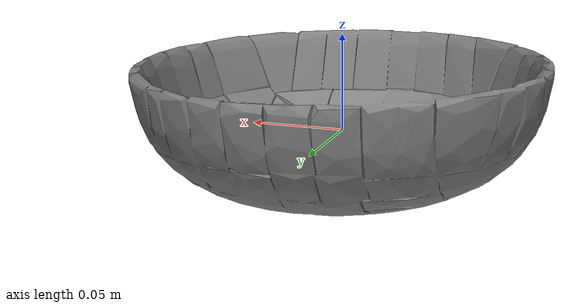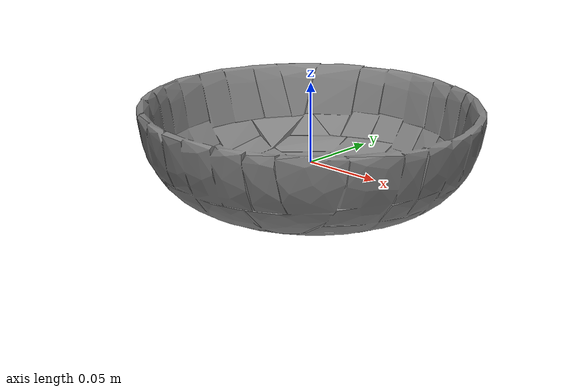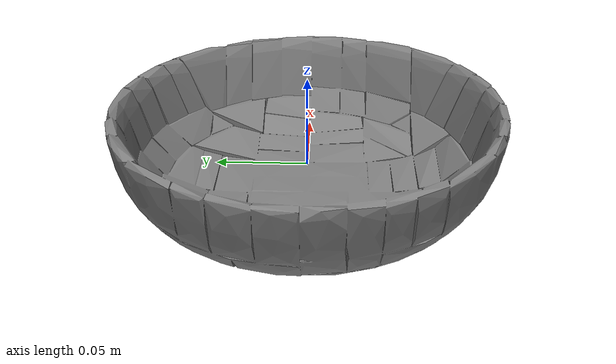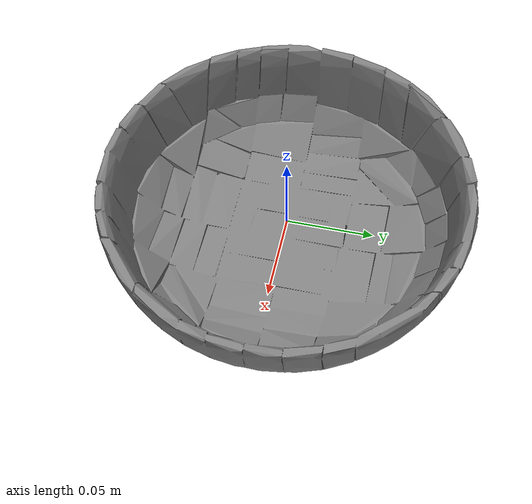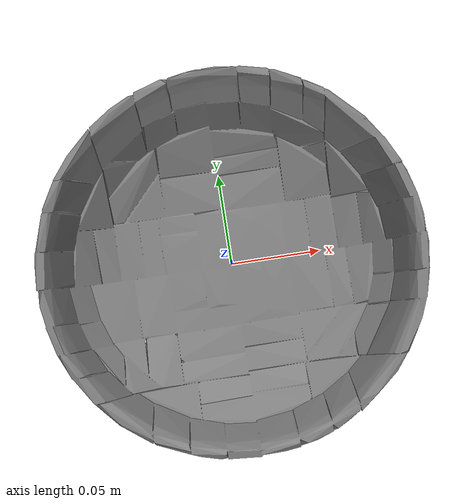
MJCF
<mujoco model="bowl_Threshold_Porcelain_Serving_Bowl_Coupe_White_M">
  <default>
    <default class="visual">
      <geom group="2" type="mesh" contype="0" conaffinity="0" />
    </default>
    <default class="collision">
      <geom group="3" type="mesh" />
    </default>
  </default>
  <asset>
    <mesh file="bowl_Threshold_Porcelain_Serving_Bowl_Coupe_White_M.stl" />
    <mesh file="bowl_Threshold_Porcelain_Serving_Bowl_Coupe_White_M_collision_0.stl" />
    <mesh file="bowl_Threshold_Porcelain_Serving_Bowl_Coupe_White_M_collision_1.stl" />
    <mesh file="bowl_Threshold_Porcelain_Serving_Bowl_Coupe_White_M_collision_2.stl" />
    <mesh file="bowl_Threshold_Porcelain_Serving_Bowl_Coupe_White_M_collision_3.stl" />
    <mesh file="bowl_Threshold_Porcelain_Serving_Bowl_Coupe_White_M_collision_4.stl" />
    <mesh file="bowl_Threshold_Porcelain_Serving_Bowl_Coupe_White_M_collision_5.stl" />
    <mesh file="bowl_Threshold_Porcelain_Serving_Bowl_Coupe_White_M_collision_6.stl" />
    <mesh file="bowl_Threshold_Porcelain_Serving_Bowl_Coupe_White_M_collision_7.stl" />
    <mesh file="bowl_Threshold_Porcelain_Serving_Bowl_Coupe_White_M_collision_8.stl" />
    <mesh file="bowl_Threshold_Porcelain_Serving_Bowl_Coupe_White_M_collision_9.stl" />
    <mesh file="bowl_Threshold_Porcelain_Serving_Bowl_Coupe_White_M_collision_10.stl" />
    <mesh file="bowl_Threshold_Porcelain_Serving_Bowl_Coupe_White_M_collision_11.stl" />
    <mesh file="bowl_Threshold_Porcelain_Serving_Bowl_Coupe_White_M_collision_12.stl" />
    <mesh file="bowl_Threshold_Porcelain_Serving_Bowl_Coupe_White_M_collision_13.stl" />
    <mesh file="bowl_Threshold_Porcelain_Serving_Bowl_Coupe_White_M_collision_14.stl" />
    <mesh file="bowl_Threshold_Porcelain_Serving_Bowl_Coupe_White_M_collision_15.stl" />
  </asset>
  <worldbody>
    <body name="bowl_Threshold_Porcelain_Serving_Bowl_Coupe_White_M">
      <geom mesh="bowl_Threshold_Porcelain_Serving_Bowl_Coupe_White_M" class="visual" />
      <geom mesh="bowl_Threshold_Porcelain_Serving_Bowl_Coupe_White_M_collision_0" class="collision" />
      <geom mesh="bowl_Threshold_Porcelain_Serving_Bowl_Coupe_White_M_collision_1" class="collision" />
      <geom mesh="bowl_Threshold_Porcelain_Serving_Bowl_Coupe_White_M_collision_2" class="collision" />
      <geom mesh="bowl_Threshold_Porcelain_Serving_Bowl_Coupe_White_M_collision_3" class="collision" />
      <geom mesh="bowl_Threshold_Porcelain_Serving_Bowl_Coupe_White_M_collision_4" class="collision" />
      <geom mesh="bowl_Threshold_Porcelain_Serving_Bowl_Coupe_White_M_collision_5" class="collision" />
      <geom mesh="bowl_Threshold_Porcelain_Serving_Bowl_Coupe_White_M_collision_6" class="collision" />
      <geom mesh="bowl_Threshold_Porcelain_Serving_Bowl_Coupe_White_M_collision_7" class="collision" />
      <geom mesh="bowl_Threshold_Porcelain_Serving_Bowl_Coupe_White_M_collision_8" class="collision" />
      <geom mesh="bowl_Threshold_Porcelain_Serving_Bowl_Coupe_White_M_collision_9" class="collision" />
      <geom mesh="bowl_Threshold_Porcelain_Serving_Bowl_Coupe_White_M_collision_10" class="collision" />
      <geom mesh="bowl_Threshold_Porcelain_Serving_Bowl_Coupe_White_M_collision_11" class="collision" />
      <geom mesh="bowl_Threshold_Porcelain_Serving_Bowl_Coupe_White_M_collision_12" class="collision" />
      <geom mesh="bowl_Threshold_Porcelain_Serving_Bowl_Coupe_White_M_collision_13" class="collision" />
      <geom mesh="bowl_Threshold_Porcelain_Serving_Bowl_Coupe_White_M_collision_14" class="collision" />
      <geom mesh="bowl_Threshold_Porcelain_Serving_Bowl_Coupe_White_M_collision_15" class="collision" />
    </body>
  </worldbody>
</mujoco>
